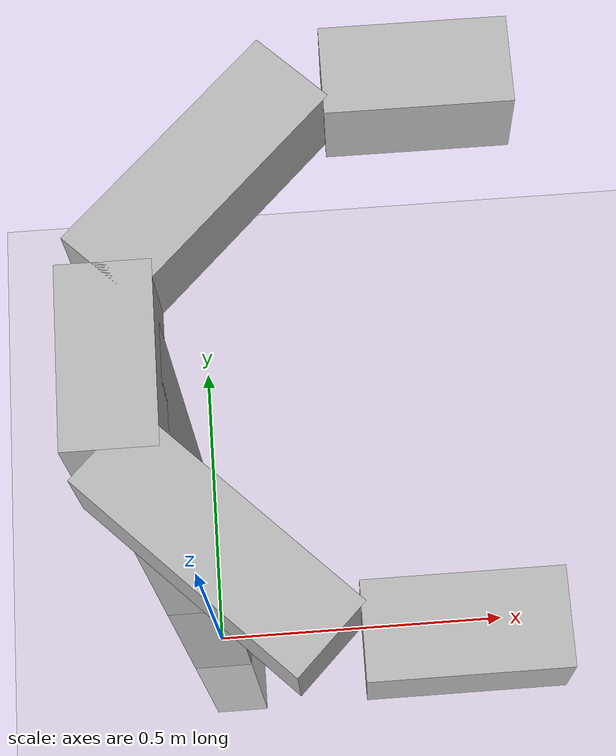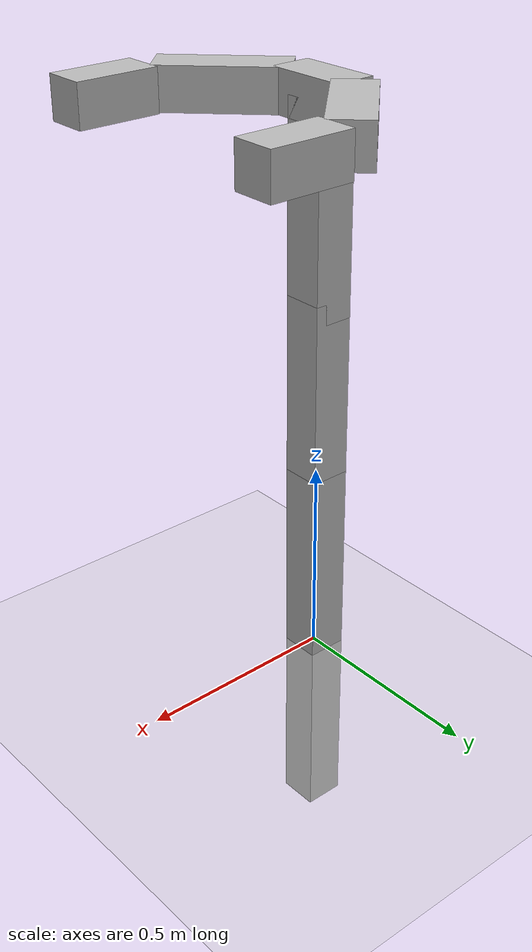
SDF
<?xml version="1.0"?>
<sdf version="1.4">
  <world name="default">
    <!-- Ground Plane -->
    <include>
      <uri>model://ground_plane</uri>
    </include>

    <include>
      <uri>model://sun</uri>
    </include>
	  <model name="manipulator">
	    <include>
	      <uri>model://gripper</uri>
	      <pose>0 0 0.4 0 0 0</pose>
	    </include>

	    <include>
	      <uri>model://arm</uri>
	      <pose>0 0 0 0 0 0</pose>
	    </include>

	    <joint name="arm_gripper_joint" type="fixed">
	      <parent>three_link::top</parent>
	      <child>gripper_part::palm</child>
	    </joint>

		<plugin name="three_link_package" filename="libthree_link_package.so"/>
	  </model>
  </world>
</sdf>

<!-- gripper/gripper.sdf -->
<sdf version="1.4">
    <model name="gripper_part">
        <link name="palm">
            <pose>0.0 0.0 1 0 0 0</pose>
            <inertial>
                <inertia>
                    <ixx>0.01</ixx>
                    <ixy>0</ixy>
                    <ixz>0</ixz>
                    <iyy>0.01</iyy>
                    <iyz>0</iyz>
                    <izz>0.01</izz>
                </inertia>
                <mass>0.5</mass>
            </inertial>
            <collision name="collision">
                <geometry>
                    <box>
                        <size>0.1 0.2 0.1</size>
                    </box>
                </geometry>
            </collision>
            <visual name="visual">
                <geometry>
                    <box>
                        <size>0.1 0.2 0.1</size>
                    </box>
                </geometry>
                <material>
                    <script>Gazebo/Red</script>
                </material>
            </visual>
        </link>
        <link name="left_finger">
            <pose>0.1 0.2 1 0 0 -0.78539</pose>
            <inertial>
                <inertia>
                    <ixx>0.01</ixx>
                    <ixy>0</ixy>
                    <ixz>0</ixz>
                    <iyy>0.01</iyy>
                    <iyz>0</iyz>
                    <izz>0.01</izz>
                </inertia>
                <mass>0.1</mass>
            </inertial>
            <collision name="collision">
                <geometry>
                    <box>
                        <size>0.1 0.3 0.1</size>
                    </box>
                </geometry>
            </collision>
            <visual name="visual">
                <geometry>
                    <box>
                        <size>0.1 0.3 0.1</size>
                    </box>
                </geometry>
                <material>
                    <script>Gazebo/Blue</script>
                </material>
            </visual>
        </link>
        <link name="left_finger_tip">
            <pose>0.336 0.3 1 0 0 1.5707</pose>
            <inertial>
                <inertia>
                    <ixx>0.01</ixx>
                    <ixy>0</ixy>
                    <ixz>0</ixz>
                    <iyy>0.01</iyy>
                    <iyz>0</iyz>
                    <izz>0.01</izz>
                </inertia>
                <mass>0.1</mass>
            </inertial>
            <collision name="collision">
                <geometry>
                    <box>
                        <size>0.1 0.2 0.1</size>
                    </box>
                </geometry>
            </collision>
            <visual name="visual">
                <geometry>
                    <box>
                        <size>0.1 0.2 0.1</size>
                    </box>
                </geometry>
                <material>
                    <script>Gazebo/Blue</script>
                </material>
            </visual>
        </link>
        <link name="right_finger">
            <pose>0.1 -0.2 1 0 0 .78539</pose>
            <inertial>
                <inertia>
                    <ixx>0.01</ixx>
                    <ixy>0</ixy>
                    <ixz>0</ixz>
                    <iyy>0.01</iyy>
                    <iyz>0</iyz>
                    <izz>0.01</izz>
                </inertia>
                <mass>0.1</mass>
            </inertial>
            <collision name="collision">
                <geometry>
                    <box>
                        <size>0.1 0.3 0.1</size>
                    </box>
                </geometry>
            </collision>
            <visual name="visual">
                <geometry>
                    <box>
                        <size>0.1 0.3 0.1</size>
                    </box>
                </geometry>
                <material>
                    <script>Gazebo/Green</script>
                </material>
            </visual>
        </link>
        <link name="right_finger_tip">
            <pose>0.336 -0.3 1 0 0 1.5707</pose>
            <inertial>
                <inertia>
                    <ixx>0.01</ixx>
                    <ixy>0</ixy>
                    <ixz>0</ixz>
                    <iyy>0.01</iyy>
                    <iyz>0</iyz>
                    <izz>0.01</izz>
                </inertia>
                <mass>0.1</mass>
            </inertial>
            <collision name="collision">
                <geometry>
                    <box>
                        <size>0.1 0.2 0.1</size>
                    </box>
                </geometry>
            </collision>
            <visual name="visual">
                <geometry>
                    <box>
                        <size>0.1 0.2 0.1</size>
                    </box>
                </geometry>
                <material>
                    <script>Gazebo/Green</script>
                </material>
            </visual>
        </link>
                <joint name="palm_left_finger" type="revolute">
            <pose>0 -0.15 0 0 0 0</pose>
            <child>left_finger</child>
            <parent>palm</parent>
            <axis>
                <limit>
                    <lower>-0.4</lower>
                    <upper>0.4</upper>
                </limit>
                <xyz>0 0 1</xyz>
            </axis>
        </joint>
        <joint name="left_finger_tip" type="revolute">
            <pose>0 0.1 0 0 0 0</pose>
            <child>left_finger_tip</child>
            <parent>left_finger</parent>
            <axis>
                <limit>
                    <lower>-0.4</lower>
                    <upper>0.4</upper>
                </limit>
                <xyz>0 0 1</xyz>
            </axis>
        </joint>
        <joint name="palm_right_finger" type="revolute">
            <pose>0 0.15 0 0 0 0</pose>
            <child>right_finger</child>
            <parent>palm</parent>
            <axis>
                <limit>
                    <lower>-0.4</lower>
                    <upper>0.4</upper>
                </limit>
                <xyz>0 0 1</xyz>
            </axis>
        </joint>
        <joint name="right_finger_tip" type="revolute">
            <pose>0 0.1 0 0 0 0</pose>
            <child>right_finger_tip</child>
            <parent>right_finger</parent>
            <axis>
                <limit>
                    <lower>-0.4</lower>
                    <upper>0.4</upper>
                </limit>
                <xyz>0 0 1</xyz>
            </axis>
        </joint>
        <static>false</static>
    </model>
</sdf>

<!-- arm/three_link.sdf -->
<sdf version="1.6">
  <model name="three_link">

        <static>false</static>

        <link name='lower'>
            <pose>0 0 0 0 0 0</pose>
            <inertial>
                <inertia>
                    <ixx>0.01</ixx>
                    <ixy>0</ixy>
                    <ixz>0</ixz>
                    <iyy>0.01</iyy>
                    <iyz>0</iyz>
                    <izz>0.01</izz>
                </inertia>
                <mass>50</mass>
            </inertial>

            <collision name='collision'>
              <geometry>
                <box>
                  <size>.1 .1 1</size>
                </box>
              </geometry>
            </collision>

            <visual name='visual'>
              <geometry>
                <box>
                  <size>.1 .1 1</size>
                </box>
              </geometry>
            </visual>

        </link>

        <link name='mid'>
            <pose>0 0 .70 0 0 0</pose>

            <collision name='collision'>
              <geometry>
                <box>
                  <size>.1 .1 .5</size>
                </box>
              </geometry>
            </collision>

            <visual name='visual'>
              <geometry>
                <box>
                  <size>.1 .1 .5</size>
                </box>
              </geometry>
            </visual>

        </link>

        <link name='top'>
            <pose>0 0 1.15 0 0 0</pose>

            <collision name='collision'>
              <geometry>
                <box>
                  <size>.1 .1 .5</size>
                </box>
              </geometry>
            </collision>

            <visual name='visual'>
              <geometry>
                <box>
                  <size>.1 .1 .5</size>
                </box>
              </geometry>
            </visual>

        </link>
      <joint name="fixed" type="fixed">
      <pose>0 0 0 0 0 0</pose>
        <child>low</child>
        <parent>world</parent>
      </joint>

      <joint type="revolute" name="low_mid">
        <pose>0 0 -0.225 0 0 0</pose>
        <child>mid</child>
        <parent>lower</parent>
        <axis>
          <xyz>0 0 1</xyz>
        </axis>
      </joint>
      <joint type="revolute" name="mid_top">
        <pose>0 0 -0.225 0 0 0</pose>
        <child>top</child>
        <parent>mid</parent>
        <axis>
          <xyz>0 0 1</xyz>
        </axis>
      </joint>
  </model>
</sdf>
